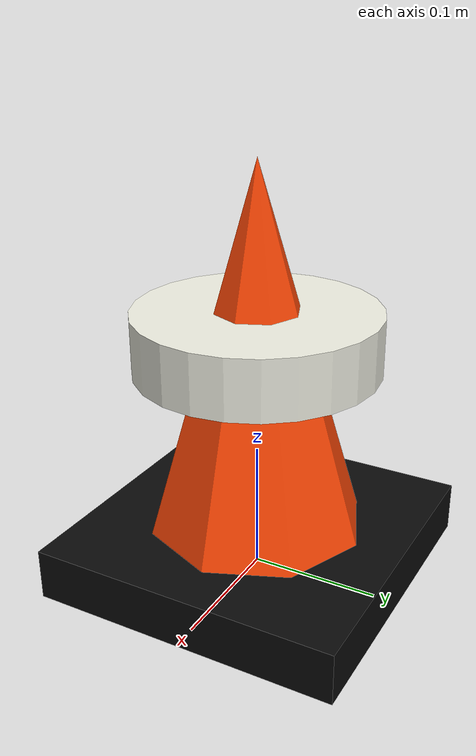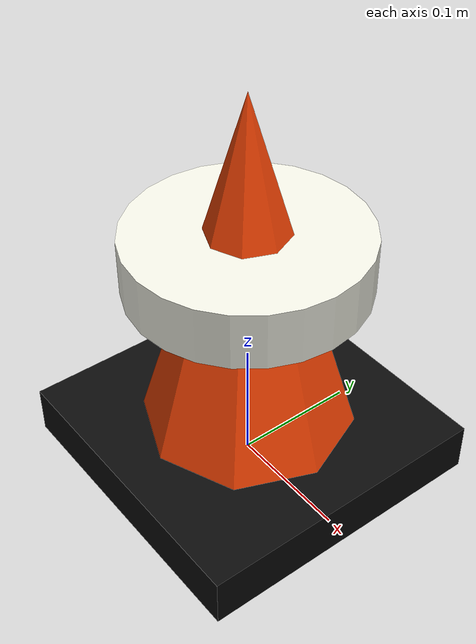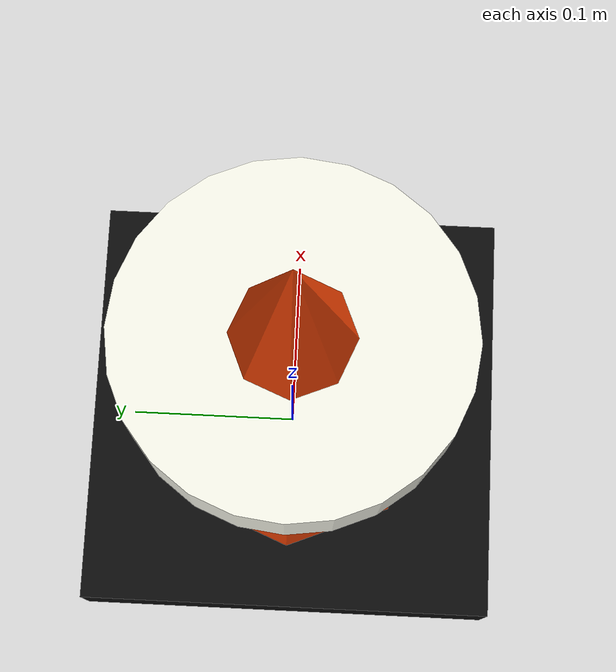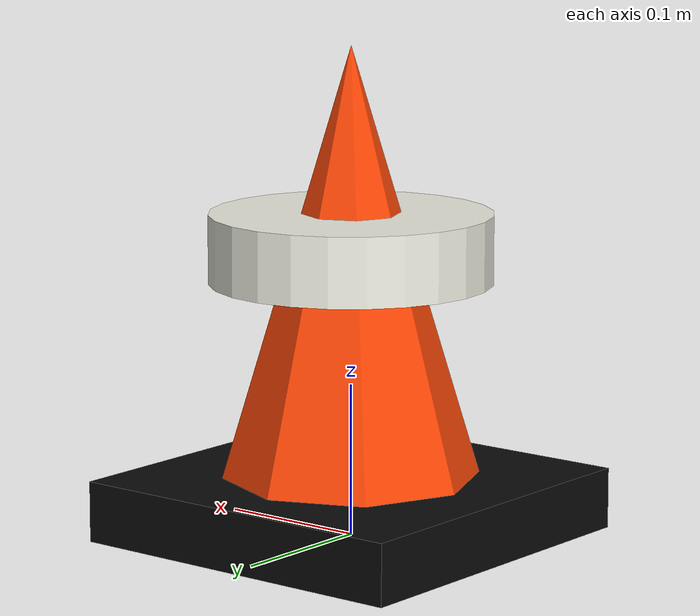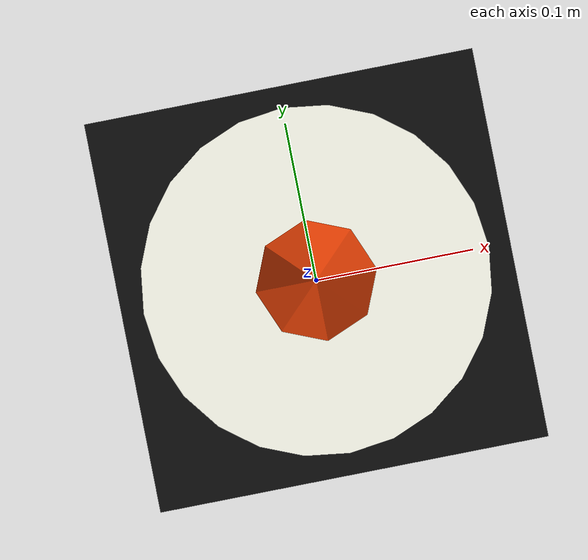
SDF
<?xml version="1.0"?>
<sdf version="1.8">
  <model name="traffic_cone">
    <static>true</static>
    <link name="cone_link">
      <pose>0 0 0.17 0 0 0</pose>
      <inertial>
        <mass>0.4</mass>
        <inertia>
          <ixx>0.003</ixx>
          <iyy>0.003</iyy>
          <izz>0.002</izz>
          <ixy>0</ixy>
          <ixz>0</ixz>
          <iyz>0</iyz>
        </inertia>
      </inertial>
      <collision name="base_collision">
        <pose>0 0 -0.15 0 0 0</pose>
        <geometry>
          <box>
            <size>0.24 0.24 0.04</size>
          </box>
        </geometry>
      </collision>
      <collision name="body_collision">
        <pose>0 0 0.0 0 0 0</pose>
        <geometry>
          <cylinder>
            <radius>0.09</radius>
            <length>0.30</length>
          </cylinder>
        </geometry>
      </collision>
      <visual name="base_visual">
        <pose>0 0 -0.15 0 0 0</pose>
        <geometry>
          <box>
            <size>0.24 0.24 0.04</size>
          </box>
        </geometry>
        <material>
          <ambient>0.04 0.04 0.04 1</ambient>
          <diffuse>0.04 0.04 0.04 1</diffuse>
          <specular>0.02 0.02 0.02 1</specular>
        </material>
      </visual>
      <visual name="body_visual">
        <pose>0 0 0.0 0 0 0</pose>
        <geometry>
          <mesh>
            <uri>model://traffic_cone/meshes/cone_body.stl</uri>
          </mesh>
        </geometry>
        <material>
          <ambient>1.0 0.28 0.02 1</ambient>
          <diffuse>1.0 0.28 0.02 1</diffuse>
          <specular>0.35 0.22 0.12 1</specular>
        </material>
      </visual>
      <visual name="stripe_visual">
        <pose>0 0 0.02 0 0 0</pose>
        <geometry>
          <cylinder>
            <radius>0.092</radius>
            <length>0.045</length>
          </cylinder>
        </geometry>
        <material>
          <ambient>0.95 0.95 0.9 1</ambient>
          <diffuse>0.95 0.95 0.9 1</diffuse>
          <specular>0.25 0.25 0.2 1</specular>
        </material>
      </visual>
    </link>
  </model>
</sdf>
